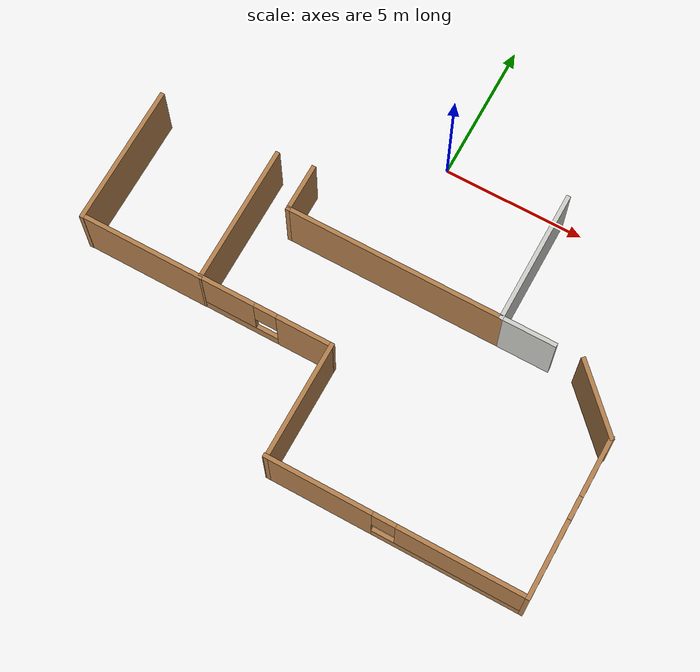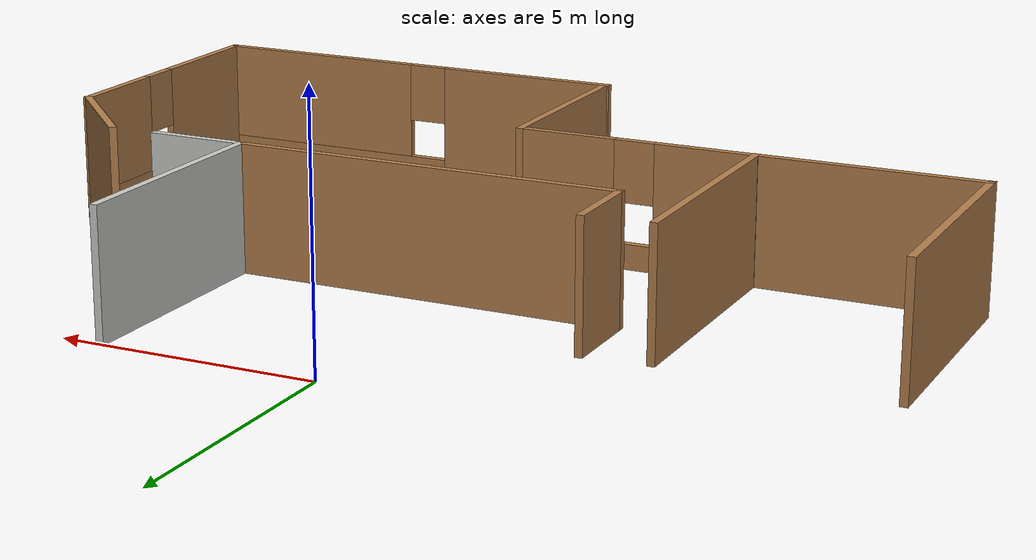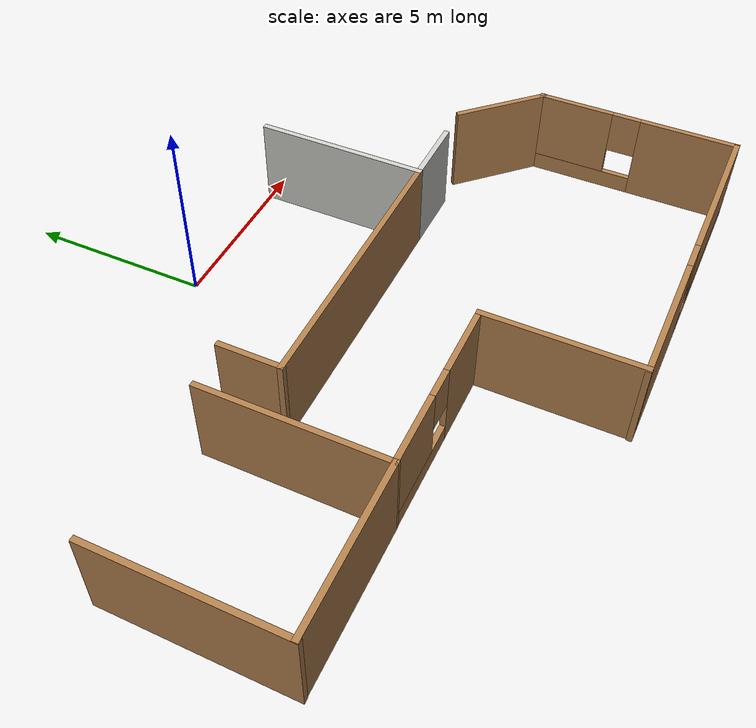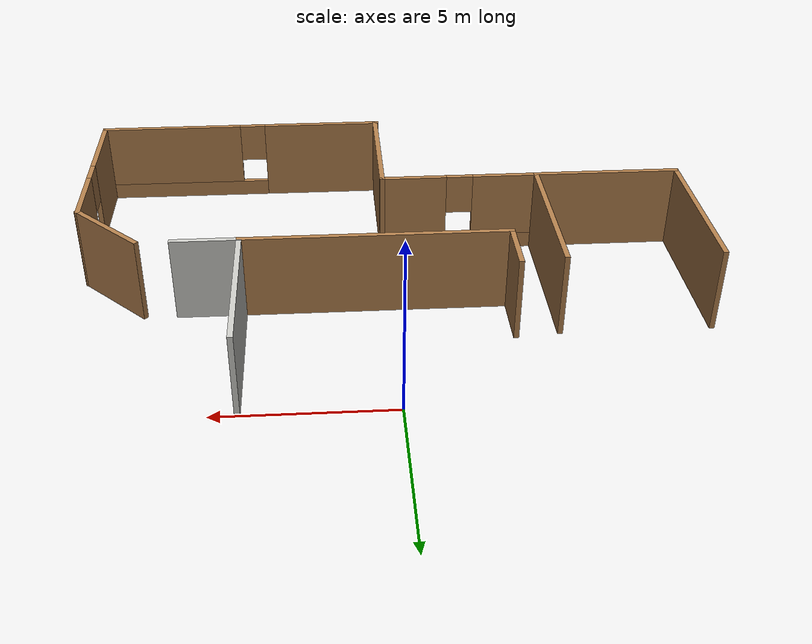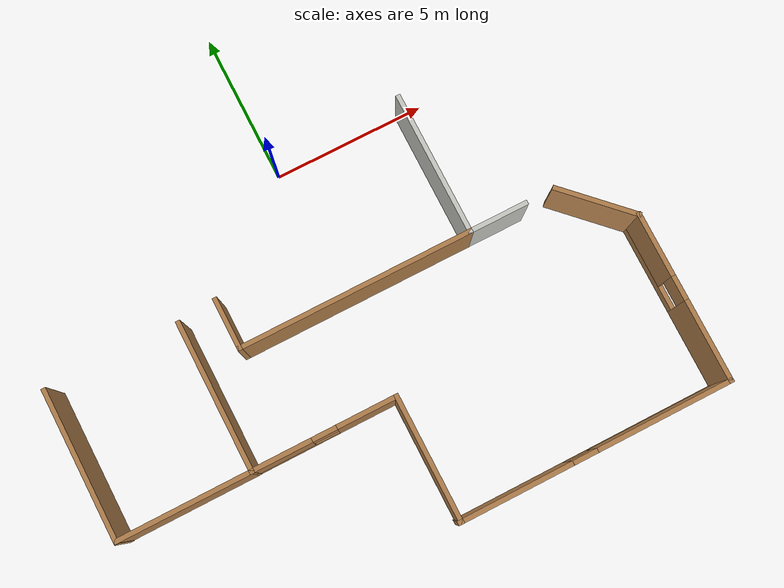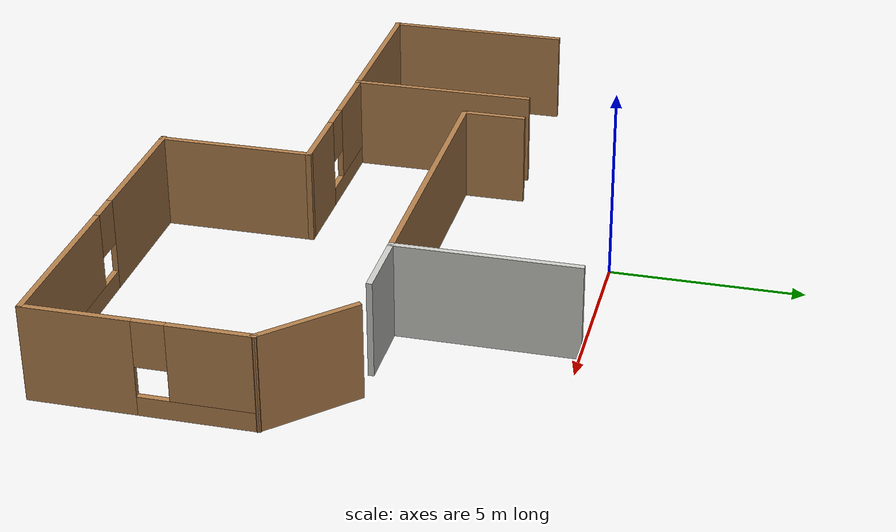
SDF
<sdf version="1.6">
 <model name="myHouse">
  <link name="Wall_0">
   <pose>0.060223 -9.98751 0 0 0 -1.5708</pose>
   <visual name="Wall_0_Visual">
    <pose>0 0 1.25 0 -0 0</pose>
    <geometry><box><size>4.184 0.15 2.5</size></box></geometry>
    <material>
     <script><uri>file://media/materials/scripts/gazebo.material</uri><name>Gazebo/Wood</name></script>
     <ambient>1 1 1 1</ambient>
     <diffuse>1 1 1 1</diffuse>
     <specular>0.2 0.2 0.2 1</specular>
     <emissive>0 0 0 1</emissive>
    </material>
    <meta><layer>0</layer></meta>
   </visual>
   <collision name="Wall_0_Collision">
    <pose>0 0 1.25 0 -0 0</pose>
    <geometry><box><size>4.184 0.15 2.5</size></box></geometry>
    <surface>
     <friction>
      <ode><mu>1</mu><mu2>1</mu2><fdir1>0 0 0</fdir1><slip1>0</slip1><slip2>0</slip2></ode>
      <torsional>
       <coefficient>1</coefficient>
       <patch_radius>0</patch_radius>
       <surface_radius>0</surface_radius>
       <use_patch_radius>1</use_patch_radius>
       <ode><slip>0</slip></ode>
      </torsional>
     </friction>
     <bounce><restitution_coefficient>0</restitution_coefficient><threshold>1e+06</threshold></bounce>
     <contact>
      <collide_without_contact>0</collide_without_contact>
      <collide_without_contact_bitmask>1</collide_without_contact_bitmask>
      <collide_bitmask>1</collide_bitmask>
      <ode>
       <soft_cfm>0</soft_cfm>
       <soft_erp>0.2</soft_erp>
       <kp>1e+13</kp>
       <kd>1</kd>
       <max_vel>0.01</max_vel>
       <min_depth>0</min_depth>
      </ode>
      <bullet>
       <split_impulse>1</split_impulse>
       <split_impulse_penetration_threshold>-0.01</split_impulse_penetration_threshold>
       <soft_cfm>0</soft_cfm>
       <soft_erp>0.2</soft_erp>
       <kp>1e+13</kp>
       <kd>1</kd>
      </bullet>
     </contact>
    </surface>
   </collision>
  </link>
  <link name="Wall_1">
   <pose>4.45004 -12.0042 0 0 -0 0</pose>
   <visual name="Wall_1_Visual_0">
    <pose>-2.62145 0 1.25 0 -0 0</pose>
    <geometry><box><size>3.7571 0.15 2.5</size></box></geometry>
    <material>
     <script><uri>file://media/materials/scripts/gazebo.material</uri><name>Gazebo/Wood</name></script>
     <ambient>1 1 1 1</ambient>
     <diffuse>1 1 1 1</diffuse>
     <specular>0.2 0.2 0.2 1</specular>
     <emissive>0 0 0 1</emissive>
    </material>
    <meta><layer>0</layer></meta>
   </visual>
   <visual name="Wall_1_Visual_1">
    <pose>1.87855 0 0.25 0 -0 0</pose>
    <geometry><box><size>5.2429 0.15 0.5</size></box></geometry>
    <material>
     <script><uri>file://media/materials/scripts/gazebo.material</uri><name>Gazebo/Wood</name></script>
     <ambient>1 1 1 1</ambient>
     <diffuse>1 1 1 1</diffuse>
     <specular>0.2 0.2 0.2 1</specular>
     <emissive>0 0 0 1</emissive>
    </material>
    <meta><layer>0</layer></meta>
   </visual>
   <visual name="Wall_1_Visual_2">
    <pose>2.27855 0 1.5 0 -0 0</pose>
    <geometry><box><size>4.4429 0.15 2</size></box></geometry>
    <material>
     <script><uri>file://media/materials/scripts/gazebo.material</uri><name>Gazebo/Wood</name></script>
     <ambient>1 1 1 1</ambient>
     <diffuse>1 1 1 1</diffuse>
     <specular>0.2 0.2 0.2 1</specular>
     <emissive>0 0 0 1</emissive>
    </material>
    <meta><layer>0</layer></meta>
   </visual>
   <visual name="Wall_1_Visual_3">
    <pose>-0.342896 0 1.9 0 -0 0</pose>
    <geometry><box><size>0.8 0.15 1.2</size></box></geometry>
    <material>
     <script><uri>file://media/materials/scripts/gazebo.material</uri><name>Gazebo/Wood</name></script>
     <ambient>1 1 1 1</ambient>
     <diffuse>1 1 1 1</diffuse>
     <specular>0.2 0.2 0.2 1</specular>
     <emissive>0 0 0 1</emissive>
    </material>
    <meta><layer>0</layer></meta>
   </visual>
   <collision name="Wall_1_Collision_0">
    <pose>-2.62145 0 1.25 0 -0 0</pose>
    <geometry><box><size>3.7571 0.15 2.5</size></box></geometry>
    <surface>
     <friction>
      <ode><mu>1</mu><mu2>1</mu2><fdir1>0 0 0</fdir1><slip1>0</slip1><slip2>0</slip2></ode>
      <torsional>
       <coefficient>1</coefficient>
       <patch_radius>0</patch_radius>
       <surface_radius>0</surface_radius>
       <use_patch_radius>1</use_patch_radius>
       <ode><slip>0</slip></ode>
      </torsional>
     </friction>
     <bounce><restitution_coefficient>0</restitution_coefficient><threshold>1e+06</threshold></bounce>
     <contact>
      <collide_without_contact>0</collide_without_contact>
      <collide_without_contact_bitmask>1</collide_without_contact_bitmask>
      <collide_bitmask>1</collide_bitmask>
      <ode>
       <soft_cfm>0</soft_cfm>
       <soft_erp>0.2</soft_erp>
       <kp>1e+13</kp>
       <kd>1</kd>
       <max_vel>0.01</max_vel>
       <min_depth>0</min_depth>
      </ode>
      <bullet>
       <split_impulse>1</split_impulse>
       <split_impulse_penetration_threshold>-0.01</split_impulse_penetration_threshold>
       <soft_cfm>0</soft_cfm>
       <soft_erp>0.2</soft_erp>
       <kp>1e+13</kp>
       <kd>1</kd>
      </bullet>
     </contact>
    </surface>
   </collision>
   <collision name="Wall_1_Collision_1">
    <pose>1.87855 0 0.25 0 -0 0</pose>
    <geometry><box><size>5.2429 0.15 0.5</size></box></geometry>
    <surface>
     <friction>
      <ode><mu>1</mu><mu2>1</mu2><fdir1>0 0 0</fdir1><slip1>0</slip1><slip2>0</slip2></ode>
      <torsional>
       <coefficient>1</coefficient>
       <patch_radius>0</patch_radius>
       <surface_radius>0</surface_radius>
       <use_patch_radius>1</use_patch_radius>
       <ode><slip>0</slip></ode>
      </torsional>
     </friction>
     <bounce><restitution_coefficient>0</restitution_coefficient><threshold>1e+06</threshold></bounce>
     <contact>
      <collide_without_contact>0</collide_without_contact>
      <collide_without_contact_bitmask>1</collide_without_contact_bitmask>
      <collide_bitmask>1</collide_bitmask>
      <ode>
       <soft_cfm>0</soft_cfm>
       <soft_erp>0.2</soft_erp>
       <kp>1e+13</kp>
       <kd>1</kd>
       <max_vel>0.01</max_vel>
       <min_depth>0</min_depth>
      </ode>
      <bullet>
       <split_impulse>1</split_impulse>
       <split_impulse_penetration_threshold>-0.01</split_impulse_penetration_threshold>
       <soft_cfm>0</soft_cfm>
       <soft_erp>0.2</soft_erp>
       <kp>1e+13</kp>
       <kd>1</kd>
      </bullet>
     </contact>
    </surface>
   </collision>
   <collision name="Wall_1_Collision_2">
    <pose>2.27855 0 1.5 0 -0 0</pose>
    <geometry><box><size>4.4429 0.15 2</size></box></geometry>
    <surface>
     <friction>
      <ode><mu>1</mu><mu2>1</mu2><fdir1>0 0 0</fdir1><slip1>0</slip1><slip2>0</slip2></ode>
      <torsional>
       <coefficient>1</coefficient>
       <patch_radius>0</patch_radius>
       <surface_radius>0</surface_radius>
       <use_patch_radius>1</use_patch_radius>
       <ode><slip>0</slip></ode>
      </torsional>
     </friction>
     <bounce><restitution_coefficient>0</restitution_coefficient><threshold>1e+06</threshold></bounce>
     <contact>
      <collide_without_contact>0</collide_without_contact>
      <collide_without_contact_bitmask>1</collide_without_contact_bitmask>
      <collide_bitmask>1</collide_bitmask>
      <ode>
       <soft_cfm>0</soft_cfm>
       <soft_erp>0.2</soft_erp>
       <kp>1e+13</kp>
       <kd>1</kd>
       <max_vel>0.01</max_vel>
       <min_depth>0</min_depth>
      </ode>
      <bullet>
       <split_impulse>1</split_impulse>
       <split_impulse_penetration_threshold>-0.01</split_impulse_penetration_threshold>
       <soft_cfm>0</soft_cfm>
       <soft_erp>0.2</soft_erp>
       <kp>1e+13</kp>
       <kd>1</kd>
      </bullet>
     </contact>
    </surface>
   </collision>
   <collision name="Wall_1_Collision_3">
    <pose>-0.342896 0 1.9 0 -0 0</pose>
    <geometry><box><size>0.8 0.15 1.2</size></box></geometry>
    <surface>
     <friction>
      <ode><mu>1</mu><mu2>1</mu2><fdir1>0 0 0</fdir1><slip1>0</slip1><slip2>0</slip2></ode>
      <torsional>
       <coefficient>1</coefficient>
       <patch_radius>0</patch_radius>
       <surface_radius>0</surface_radius>
       <use_patch_radius>1</use_patch_radius>
       <ode><slip>0</slip></ode>
      </torsional>
     </friction>
     <bounce><restitution_coefficient>0</restitution_coefficient><threshold>1e+06</threshold></bounce>
     <contact>
      <collide_without_contact>0</collide_without_contact>
      <collide_without_contact_bitmask>1</collide_without_contact_bitmask>
      <collide_bitmask>1</collide_bitmask>
      <ode>
       <soft_cfm>0</soft_cfm>
       <soft_erp>0.2</soft_erp>
       <kp>1e+13</kp>
       <kd>1</kd>
       <max_vel>0.01</max_vel>
       <min_depth>0</min_depth>
      </ode>
      <bullet>
       <split_impulse>1</split_impulse>
       <split_impulse_penetration_threshold>-0.01</split_impulse_penetration_threshold>
       <soft_cfm>0</soft_cfm>
       <soft_erp>0.2</soft_erp>
       <kp>1e+13</kp>
       <kd>1</kd>
      </bullet>
     </contact>
    </surface>
   </collision>
  </link>
  <link name="Wall_13">
   <pose>-6.79329 -7.98623 0 0 0 -3.14082</pose>
   <visual name="Wall_13_Visual">
    <pose>0 0 1.25 0 -0 0</pose>
    <geometry><box><size>4.46127 0.15 2.5</size></box></geometry>
    <material>
     <script><uri>file://media/materials/scripts/gazebo.material</uri><name>Gazebo/Wood</name></script>
     <ambient>1 1 1 1</ambient>
     <diffuse>1 1 1 1</diffuse>
     <specular>0.2 0.2 0.2 1</specular>
     <emissive>0 0 0 1</emissive>
    </material>
    <meta><layer>0</layer></meta>
   </visual>
   <collision name="Wall_13_Collision">
    <pose>0 0 1.25 0 -0 0</pose>
    <geometry><box><size>4.46127 0.15 2.5</size></box></geometry>
    <surface>
     <friction>
      <ode><mu>1</mu><mu2>1</mu2><fdir1>0 0 0</fdir1><slip1>0</slip1><slip2>0</slip2></ode>
      <torsional>
       <coefficient>1</coefficient>
       <patch_radius>0</patch_radius>
       <surface_radius>0</surface_radius>
       <use_patch_radius>1</use_patch_radius>
       <ode><slip>0</slip></ode>
      </torsional>
     </friction>
     <bounce><restitution_coefficient>0</restitution_coefficient><threshold>1e+06</threshold></bounce>
     <contact>
      <collide_without_contact>0</collide_without_contact>
      <collide_without_contact_bitmask>1</collide_without_contact_bitmask>
      <collide_bitmask>1</collide_bitmask>
      <ode>
       <soft_cfm>0</soft_cfm>
       <soft_erp>0.2</soft_erp>
       <kp>1e+13</kp>
       <kd>1</kd>
       <max_vel>0.01</max_vel>
       <min_depth>0</min_depth>
      </ode>
      <bullet>
       <split_impulse>1</split_impulse>
       <split_impulse_penetration_threshold>-0.01</split_impulse_penetration_threshold>
       <soft_cfm>0</soft_cfm>
       <soft_erp>0.2</soft_erp>
       <kp>1e+13</kp>
       <kd>1</kd>
      </bullet>
     </contact>
    </surface>
   </collision>
  </link>
  <link name="Wall_14">
   <pose>-8.96215 -5.57611 0 0 -0 1.5708</pose>
   <visual name="Wall_14_Visual">
    <pose>0 0 1.25 0 -0 0</pose>
    <geometry><box><size>5 0.15 2.5</size></box></geometry>
    <material>
     <script><uri>file://media/materials/scripts/gazebo.material</uri><name>Gazebo/Wood</name></script>
     <ambient>1 1 1 1</ambient>
     <diffuse>1 1 1 1</diffuse>
     <specular>0.2 0.2 0.2 1</specular>
     <emissive>0 0 0 1</emissive>
    </material>
    <meta><layer>0</layer></meta>
   </visual>
   <collision name="Wall_14_Collision">
    <pose>0 0 1.25 0 -0 0</pose>
    <geometry><box><size>5 0.15 2.5</size></box></geometry>
    <surface>
     <friction>
      <ode><mu>1</mu><mu2>1</mu2><fdir1>0 0 0</fdir1><slip1>0</slip1><slip2>0</slip2></ode>
      <torsional>
       <coefficient>1</coefficient>
       <patch_radius>0</patch_radius>
       <surface_radius>0</surface_radius>
       <use_patch_radius>1</use_patch_radius>
       <ode><slip>0</slip></ode>
      </torsional>
     </friction>
     <bounce><restitution_coefficient>0</restitution_coefficient><threshold>1e+06</threshold></bounce>
     <contact>
      <collide_without_contact>0</collide_without_contact>
      <collide_without_contact_bitmask>1</collide_without_contact_bitmask>
      <collide_bitmask>1</collide_bitmask>
      <ode>
       <soft_cfm>0</soft_cfm>
       <soft_erp>0.2</soft_erp>
       <kp>1e+13</kp>
       <kd>1</kd>
       <max_vel>0.01</max_vel>
       <min_depth>0</min_depth>
      </ode>
      <bullet>
       <split_impulse>1</split_impulse>
       <split_impulse_penetration_threshold>-0.01</split_impulse_penetration_threshold>
       <soft_cfm>0</soft_cfm>
       <soft_erp>0.2</soft_erp>
       <kp>1e+13</kp>
       <kd>1</kd>
      </bullet>
     </contact>
    </surface>
   </collision>
  </link>
  <link name="Wall_2">
   <pose>8.91022 -9.23751 0 0 -0 1.5708</pose>
   <visual name="Wall_2_Visual_0">
    <pose>-1.47369 0 1.25 0 -0 0</pose>
    <geometry><box><size>2.73646 0.15 2.5</size></box></geometry>
    <material>
     <script><uri>file://media/materials/scripts/gazebo.material</uri><name>Gazebo/Wood</name></script>
     <ambient>1 1 1 1</ambient>
     <diffuse>1 1 1 1</diffuse>
     <specular>0.2 0.2 0.2 1</specular>
     <emissive>0 0 0 1</emissive>
    </material>
    <meta><layer>0</layer></meta>
   </visual>
   <visual name="Wall_2_Visual_1">
    <pose>1.36823 0 0.25 0 -0 0</pose>
    <geometry><box><size>2.94738 0.15 0.5</size></box></geometry>
    <material>
     <script><uri>file://media/materials/scripts/gazebo.material</uri><name>Gazebo/Wood</name></script>
     <ambient>1 1 1 1</ambient>
     <diffuse>1 1 1 1</diffuse>
     <specular>0.2 0.2 0.2 1</specular>
     <emissive>0 0 0 1</emissive>
    </material>
    <meta><layer>0</layer></meta>
   </visual>
   <visual name="Wall_2_Visual_2">
    <pose>1.76823 0 1.5 0 -0 0</pose>
    <geometry><box><size>2.14738 0.15 2</size></box></geometry>
    <material>
     <script><uri>file://media/materials/scripts/gazebo.material</uri><name>Gazebo/Wood</name></script>
     <ambient>1 1 1 1</ambient>
     <diffuse>1 1 1 1</diffuse>
     <specular>0.2 0.2 0.2 1</specular>
     <emissive>0 0 0 1</emissive>
    </material>
    <meta><layer>0</layer></meta>
   </visual>
   <visual name="Wall_2_Visual_3">
    <pose>0.294538 0 1.9 0 -0 0</pose>
    <geometry><box><size>0.8 0.15 1.2</size></box></geometry>
    <material>
     <script><uri>file://media/materials/scripts/gazebo.material</uri><name>Gazebo/Wood</name></script>
     <ambient>1 1 1 1</ambient>
     <diffuse>1 1 1 1</diffuse>
     <specular>0.2 0.2 0.2 1</specular>
     <emissive>0 0 0 1</emissive>
    </material>
    <meta><layer>0</layer></meta>
   </visual>
   <collision name="Wall_2_Collision_0">
    <pose>-1.47369 0 1.25 0 -0 0</pose>
    <geometry><box><size>2.73646 0.15 2.5</size></box></geometry>
    <surface>
     <friction>
      <ode><mu>1</mu><mu2>1</mu2><fdir1>0 0 0</fdir1><slip1>0</slip1><slip2>0</slip2></ode>
      <torsional>
       <coefficient>1</coefficient>
       <patch_radius>0</patch_radius>
       <surface_radius>0</surface_radius>
       <use_patch_radius>1</use_patch_radius>
       <ode><slip>0</slip></ode>
      </torsional>
     </friction>
     <bounce><restitution_coefficient>0</restitution_coefficient><threshold>1e+06</threshold></bounce>
     <contact>
      <collide_without_contact>0</collide_without_contact>
      <collide_without_contact_bitmask>1</collide_without_contact_bitmask>
      <collide_bitmask>1</collide_bitmask>
      <ode>
       <soft_cfm>0</soft_cfm>
       <soft_erp>0.2</soft_erp>
       <kp>1e+13</kp>
       <kd>1</kd>
       <max_vel>0.01</max_vel>
       <min_depth>0</min_depth>
      </ode>
      <bullet>
       <split_impulse>1</split_impulse>
       <split_impulse_penetration_threshold>-0.01</split_impulse_penetration_threshold>
       <soft_cfm>0</soft_cfm>
       <soft_erp>0.2</soft_erp>
       <kp>1e+13</kp>
       <kd>1</kd>
      </bullet>
     </contact>
    </surface>
   </collision>
   <collision name="Wall_2_Collision_1">
    <pose>1.36823 0 0.25 0 -0 0</pose>
    <geometry><box><size>2.94738 0.15 0.5</size></box></geometry>
    <surface>
     <friction>
      <ode><mu>1</mu><mu2>1</mu2><fdir1>0 0 0</fdir1><slip1>0</slip1><slip2>0</slip2></ode>
      <torsional>
       <coefficient>1</coefficient>
       <patch_radius>0</patch_radius>
       <surface_radius>0</surface_radius>
       <use_patch_radius>1</use_patch_radius>
       <ode><slip>0</slip></ode>
      </torsional>
     </friction>
     <bounce><restitution_coefficient>0</restitution_coefficient><threshold>1e+06</threshold></bounce>
     <contact>
      <collide_without_contact>0</collide_without_contact>
      <collide_without_contact_bitmask>1</collide_without_contact_bitmask>
      <collide_bitmask>1</collide_bitmask>
      <ode>
       <soft_cfm>0</soft_cfm>
       <soft_erp>0.2</soft_erp>
       <kp>1e+13</kp>
       <kd>1</kd>
       <max_vel>0.01</max_vel>
       <min_depth>0</min_depth>
      </ode>
      <bullet>
       <split_impulse>1</split_impulse>
       <split_impulse_penetration_threshold>-0.01</split_impulse_penetration_threshold>
       <soft_cfm>0</soft_cfm>
       <soft_erp>0.2</soft_erp>
       <kp>1e+13</kp>
       <kd>1</kd>
      </bullet>
     </contact>
    </surface>
   </collision>
   <collision name="Wall_2_Collision_2">
    <pose>1.76823 0 1.5 0 -0 0</pose>
    <geometry><box><size>2.14738 0.15 2</size></box></geometry>
    <surface>
     <friction>
      <ode><mu>1</mu><mu2>1</mu2><fdir1>0 0 0</fdir1><slip1>0</slip1><slip2>0</slip2></ode>
      <torsional>
       <coefficient>1</coefficient>
       <patch_radius>0</patch_radius>
       <surface_radius>0</surface_radius>
       <use_patch_radius>1</use_patch_radius>
       <ode><slip>0</slip></ode>
      </torsional>
     </friction>
     <bounce><restitution_coefficient>0</restitution_coefficient><threshold>1e+06</threshold></bounce>
     <contact>
      <collide_without_contact>0</collide_without_contact>
      <collide_without_contact_bitmask>1</collide_without_contact_bitmask>
      <collide_bitmask>1</collide_bitmask>
      <ode>
       <soft_cfm>0</soft_cfm>
       <soft_erp>0.2</soft_erp>
       <kp>1e+13</kp>
       <kd>1</kd>
       <max_vel>0.01</max_vel>
       <min_depth>0</min_depth>
      </ode>
      <bullet>
       <split_impulse>1</split_impulse>
       <split_impulse_penetration_threshold>-0.01</split_impulse_penetration_threshold>
       <soft_cfm>0</soft_cfm>
       <soft_erp>0.2</soft_erp>
       <kp>1e+13</kp>
       <kd>1</kd>
      </bullet>
     </contact>
    </surface>
   </collision>
   <collision name="Wall_2_Collision_3">
    <pose>0.294538 0 1.9 0 -0 0</pose>
    <geometry><box><size>0.8 0.15 1.2</size></box></geometry>
    <surface>
     <friction>
      <ode><mu>1</mu><mu2>1</mu2><fdir1>0 0 0</fdir1><slip1>0</slip1><slip2>0</slip2></ode>
      <torsional>
       <coefficient>1</coefficient>
       <patch_radius>0</patch_radius>
       <surface_radius>0</surface_radius>
       <use_patch_radius>1</use_patch_radius>
       <ode><slip>0</slip></ode>
      </torsional>
     </friction>
     <bounce><restitution_coefficient>0</restitution_coefficient><threshold>1e+06</threshold></bounce>
     <contact>
      <collide_without_contact>0</collide_without_contact>
      <collide_without_contact_bitmask>1</collide_without_contact_bitmask>
      <collide_bitmask>1</collide_bitmask>
      <ode>
       <soft_cfm>0</soft_cfm>
       <soft_erp>0.2</soft_erp>
       <kp>1e+13</kp>
       <kd>1</kd>
       <max_vel>0.01</max_vel>
       <min_depth>0</min_depth>
      </ode>
      <bullet>
       <split_impulse>1</split_impulse>
       <split_impulse_penetration_threshold>-0.01</split_impulse_penetration_threshold>
       <soft_cfm>0</soft_cfm>
       <soft_erp>0.2</soft_erp>
       <kp>1e+13</kp>
       <kd>1</kd>
      </bullet>
     </contact>
    </surface>
   </collision>
  </link>
  <link name="Wall_23">
   <pose>4.22175 -2.33234 0 0 0 -1.5708</pose>
   <visual name="Wall_23_Visual">
    <pose>0 0 1.25 0 -0 0</pose>
    <geometry><box><size>4.75 0.15 2.5</size></box></geometry>
    <material>
     <script><uri>file://media/materials/scripts/gazebo.material</uri><name>Gazebo/CeilingTiled</name></script>
     <ambient>0.921569 0.807843 0.615686 1</ambient>
     <diffuse>1 1 1 1</diffuse>
     <specular>0 0 0 1</specular>
     <emissive>0 0 0 1</emissive>
    </material>
    <meta><layer>0</layer></meta>
   </visual>
   <collision name="Wall_23_Collision">
    <pose>0 0 1.25 0 -0 0</pose>
    <geometry><box><size>4.75 0.15 2.5</size></box></geometry>
    <surface>
     <friction>
      <ode><mu>1</mu><mu2>1</mu2><fdir1>0 0 0</fdir1><slip1>0</slip1><slip2>0</slip2></ode>
      <torsional>
       <coefficient>1</coefficient>
       <patch_radius>0</patch_radius>
       <surface_radius>0</surface_radius>
       <use_patch_radius>1</use_patch_radius>
       <ode><slip>0</slip></ode>
      </torsional>
     </friction>
     <bounce><restitution_coefficient>0</restitution_coefficient><threshold>1e+06</threshold></bounce>
     <contact>
      <collide_without_contact>0</collide_without_contact>
      <collide_without_contact_bitmask>1</collide_without_contact_bitmask>
      <collide_bitmask>1</collide_bitmask>
      <ode>
       <soft_cfm>0</soft_cfm>
       <soft_erp>0.2</soft_erp>
       <kp>1e+13</kp>
       <kd>1</kd>
       <max_vel>0.01</max_vel>
       <min_depth>0</min_depth>
      </ode>
      <bullet>
       <split_impulse>1</split_impulse>
       <split_impulse_penetration_threshold>-0.01</split_impulse_penetration_threshold>
       <soft_cfm>0</soft_cfm>
       <soft_erp>0.2</soft_erp>
       <kp>1e+13</kp>
       <kd>1</kd>
      </bullet>
     </contact>
    </surface>
   </collision>
  </link>
  <link name="Wall_24">
   <pose>0.421746 -4.63234 0 0 -0 3.14159</pose>
   <visual name="Wall_24_Visual">
    <pose>0 0 1.25 0 -0 0</pose>
    <geometry><box><size>7.75 0.15 2.5</size></box></geometry>
    <material>
     <script><uri>file://media/materials/scripts/gazebo.material</uri><name>Gazebo/Wood</name></script>
     <ambient>1 1 1 1</ambient>
     <diffuse>1 1 1 1</diffuse>
     <specular>0.2 0.2 0.2 1</specular>
     <emissive>0 0 0 1</emissive>
    </material>
    <meta><layer>0</layer></meta>
   </visual>
   <collision name="Wall_24_Collision">
    <pose>0 0 1.25 0 -0 0</pose>
    <geometry><box><size>7.75 0.15 2.5</size></box></geometry>
    <surface>
     <friction>
      <ode><mu>1</mu><mu2>1</mu2><fdir1>0 0 0</fdir1><slip1>0</slip1><slip2>0</slip2></ode>
      <torsional>
       <coefficient>1</coefficient>
       <patch_radius>0</patch_radius>
       <surface_radius>0</surface_radius>
       <use_patch_radius>1</use_patch_radius>
       <ode><slip>0</slip></ode>
      </torsional>
     </friction>
     <bounce><restitution_coefficient>0</restitution_coefficient><threshold>1e+06</threshold></bounce>
     <contact>
      <collide_without_contact>0</collide_without_contact>
      <collide_without_contact_bitmask>1</collide_without_contact_bitmask>
      <collide_bitmask>1</collide_bitmask>
      <ode>
       <soft_cfm>0</soft_cfm>
       <soft_erp>0.2</soft_erp>
       <kp>1e+13</kp>
       <kd>1</kd>
       <max_vel>0.01</max_vel>
       <min_depth>0</min_depth>
      </ode>
      <bullet>
       <split_impulse>1</split_impulse>
       <split_impulse_penetration_threshold>-0.01</split_impulse_penetration_threshold>
       <soft_cfm>0</soft_cfm>
       <soft_erp>0.2</soft_erp>
       <kp>1e+13</kp>
       <kd>1</kd>
      </bullet>
     </contact>
    </surface>
   </collision>
  </link>
  <link name="Wall_25">
   <pose>-3.37825 -3.83234 0 0 -0 1.5708</pose>
   <visual name="Wall_25_Visual">
    <pose>0 0 1.25 0 -0 0</pose>
    <geometry><box><size>1.75 0.15 2.5</size></box></geometry>
    <material>
     <script><uri>file://media/materials/scripts/gazebo.material</uri><name>Gazebo/Wood</name></script>
     <ambient>1 1 1 1</ambient>
     <diffuse>1 1 1 1</diffuse>
     <specular>0.2 0.2 0.2 1</specular>
     <emissive>0 0 0 1</emissive>
    </material>
    <meta><layer>0</layer></meta>
   </visual>
   <collision name="Wall_25_Collision">
    <pose>0 0 1.25 0 -0 0</pose>
    <geometry><box><size>1.75 0.15 2.5</size></box></geometry>
    <surface>
     <friction>
      <ode><mu>1</mu><mu2>1</mu2><fdir1>0 0 0</fdir1><slip1>0</slip1><slip2>0</slip2></ode>
      <torsional>
       <coefficient>1</coefficient>
       <patch_radius>0</patch_radius>
       <surface_radius>0</surface_radius>
       <use_patch_radius>1</use_patch_radius>
       <ode><slip>0</slip></ode>
      </torsional>
     </friction>
     <bounce><restitution_coefficient>0</restitution_coefficient><threshold>1e+06</threshold></bounce>
     <contact>
      <collide_without_contact>0</collide_without_contact>
      <collide_without_contact_bitmask>1</collide_without_contact_bitmask>
      <collide_bitmask>1</collide_bitmask>
      <ode>
       <soft_cfm>0</soft_cfm>
       <soft_erp>0.2</soft_erp>
       <kp>1e+13</kp>
       <kd>1</kd>
       <max_vel>0.01</max_vel>
       <min_depth>0</min_depth>
      </ode>
      <bullet>
       <split_impulse>1</split_impulse>
       <split_impulse_penetration_threshold>-0.01</split_impulse_penetration_threshold>
       <soft_cfm>0</soft_cfm>
       <soft_erp>0.2</soft_erp>
       <kp>1e+13</kp>
       <kd>1</kd>
      </bullet>
     </contact>
    </surface>
   </collision>
  </link>
  <link name="Wall_3">
   <pose>7.99098 -5.55157 0 0 -0 2.35619</pose>
   <visual name="Wall_3_Visual">
    <pose>0 0 1.25 0 -0 0</pose>
    <geometry><box><size>2.75 0.15 2.5</size></box></geometry>
    <material>
     <script><uri>file://media/materials/scripts/gazebo.material</uri><name>Gazebo/Wood</name></script>
     <ambient>1 1 1 1</ambient>
     <diffuse>1 1 1 1</diffuse>
     <specular>0.2 0.2 0.2 1</specular>
     <emissive>0 0 0 1</emissive>
    </material>
    <meta><layer>0</layer></meta>
   </visual>
   <collision name="Wall_3_Collision">
    <pose>0 0 1.25 0 -0 0</pose>
    <geometry><box><size>2.75 0.15 2.5</size></box></geometry>
    <surface>
     <friction>
      <ode><mu>1</mu><mu2>1</mu2><fdir1>0 0 0</fdir1><slip1>0</slip1><slip2>0</slip2></ode>
      <torsional>
       <coefficient>1</coefficient>
       <patch_radius>0</patch_radius>
       <surface_radius>0</surface_radius>
       <use_patch_radius>1</use_patch_radius>
       <ode><slip>0</slip></ode>
      </torsional>
     </friction>
     <bounce><restitution_coefficient>0</restitution_coefficient><threshold>1e+06</threshold></bounce>
     <contact>
      <collide_without_contact>0</collide_without_contact>
      <collide_without_contact_bitmask>1</collide_without_contact_bitmask>
      <collide_bitmask>1</collide_bitmask>
      <ode>
       <soft_cfm>0</soft_cfm>
       <soft_erp>0.2</soft_erp>
       <kp>1e+13</kp>
       <kd>1</kd>
       <max_vel>0.01</max_vel>
       <min_depth>0</min_depth>
      </ode>
      <bullet>
       <split_impulse>1</split_impulse>
       <split_impulse_penetration_threshold>-0.01</split_impulse_penetration_threshold>
       <soft_cfm>0</soft_cfm>
       <soft_erp>0.2</soft_erp>
       <kp>1e+13</kp>
       <kd>1</kd>
      </bullet>
     </contact>
    </surface>
   </collision>
  </link>
  <link name="Wall_54">
   <pose>5.14675 -4.63234 0 0 -0 0</pose>
   <visual name="Wall_54_Visual">
    <pose>0 0 1.25 0 -0 0</pose>
    <geometry><box><size>2 0.15 2.5</size></box></geometry>
    <material>
     <script><uri>file://media/materials/scripts/gazebo.material</uri><name>Gazebo/CeilingTiled</name></script>
     <ambient>0.921569 0.807843 0.615686 1</ambient>
     <diffuse>1 1 1 1</diffuse>
     <specular>0 0 0 1</specular>
     <emissive>0 0 0 1</emissive>
    </material>
    <meta><layer>0</layer></meta>
   </visual>
   <collision name="Wall_54_Collision">
    <pose>0 0 1.25 0 -0 0</pose>
    <geometry><box><size>2 0.15 2.5</size></box></geometry>
    <surface>
     <friction>
      <ode><mu>1</mu><mu2>1</mu2><fdir1>0 0 0</fdir1><slip1>0</slip1><slip2>0</slip2></ode>
      <torsional>
       <coefficient>1</coefficient>
       <patch_radius>0</patch_radius>
       <surface_radius>0</surface_radius>
       <use_patch_radius>1</use_patch_radius>
       <ode><slip>0</slip></ode>
      </torsional>
     </friction>
     <bounce><restitution_coefficient>0</restitution_coefficient><threshold>1e+06</threshold></bounce>
     <contact>
      <collide_without_contact>0</collide_without_contact>
      <collide_without_contact_bitmask>1</collide_without_contact_bitmask>
      <collide_bitmask>1</collide_bitmask>
      <ode>
       <soft_cfm>0</soft_cfm>
       <soft_erp>0.2</soft_erp>
       <kp>1e+13</kp>
       <kd>1</kd>
       <max_vel>0.01</max_vel>
       <min_depth>0</min_depth>
      </ode>
      <bullet>
       <split_impulse>1</split_impulse>
       <split_impulse_penetration_threshold>-0.01</split_impulse_penetration_threshold>
       <soft_cfm>0</soft_cfm>
       <soft_erp>0.2</soft_erp>
       <kp>1e+13</kp>
       <kd>1</kd>
      </bullet>
     </contact>
    </surface>
   </collision>
  </link>
  <link name="Wall_7">
   <pose>-2.28871 -7.97269 0 0 0 -3.14079</pose>
   <visual name="Wall_7_Visual_0">
    <pose>-1.40995 0 1.25 0 -0 0</pose>
    <geometry><box><size>2.02832 0.15 2.5</size></box></geometry>
    <material>
     <script><uri>file://media/materials/scripts/gazebo.material</uri><name>Gazebo/Wood</name></script>
     <ambient>1 1 1 1</ambient>
     <diffuse>1 1 1 1</diffuse>
     <specular>0.2 0.2 0.2 1</specular>
     <emissive>0 0 0 1</emissive>
    </material>
    <meta><layer>0</layer></meta>
   </visual>
   <visual name="Wall_7_Visual_1">
    <pose>1.01416 0 0.25 0 -0 0</pose>
    <geometry><box><size>2.81989 0.15 0.5</size></box></geometry>
    <material>
     <script><uri>file://media/materials/scripts/gazebo.material</uri><name>Gazebo/Wood</name></script>
     <ambient>1 1 1 1</ambient>
     <diffuse>1 1 1 1</diffuse>
     <specular>0.2 0.2 0.2 1</specular>
     <emissive>0 0 0 1</emissive>
    </material>
    <meta><layer>0</layer></meta>
   </visual>
   <visual name="Wall_7_Visual_2">
    <pose>1.41416 0 1.5 0 -0 0</pose>
    <geometry><box><size>2.01989 0.15 2</size></box></geometry>
    <material>
     <script><uri>file://media/materials/scripts/gazebo.material</uri><name>Gazebo/Wood</name></script>
     <ambient>1 1 1 1</ambient>
     <diffuse>1 1 1 1</diffuse>
     <specular>0.2 0.2 0.2 1</specular>
     <emissive>0 0 0 1</emissive>
    </material>
    <meta><layer>0</layer></meta>
   </visual>
   <visual name="Wall_7_Visual_3">
    <pose>0.00421 0 1.9 0 -0 0</pose>
    <geometry><box><size>0.8 0.15 1.2</size></box></geometry>
    <material>
     <script><uri>file://media/materials/scripts/gazebo.material</uri><name>Gazebo/Wood</name></script>
     <ambient>1 1 1 1</ambient>
     <diffuse>1 1 1 1</diffuse>
     <specular>0.2 0.2 0.2 1</specular>
     <emissive>0 0 0 1</emissive>
    </material>
    <meta><layer>0</layer></meta>
   </visual>
   <collision name="Wall_7_Collision_0">
    <pose>-1.40995 0 1.25 0 -0 0</pose>
    <geometry><box><size>2.02832 0.15 2.5</size></box></geometry>
    <surface>
     <friction>
      <ode><mu>1</mu><mu2>1</mu2><fdir1>0 0 0</fdir1><slip1>0</slip1><slip2>0</slip2></ode>
      <torsional>
       <coefficient>1</coefficient>
       <patch_radius>0</patch_radius>
       <surface_radius>0</surface_radius>
       <use_patch_radius>1</use_patch_radius>
       <ode><slip>0</slip></ode>
      </torsional>
     </friction>
     <bounce><restitution_coefficient>0</restitution_coefficient><threshold>1e+06</threshold></bounce>
     <contact>
      <collide_without_contact>0</collide_without_contact>
      <collide_without_contact_bitmask>1</collide_without_contact_bitmask>
      <collide_bitmask>1</collide_bitmask>
      <ode>
       <soft_cfm>0</soft_cfm>
       <soft_erp>0.2</soft_erp>
       <kp>1e+13</kp>
       <kd>1</kd>
       <max_vel>0.01</max_vel>
       <min_depth>0</min_depth>
      </ode>
      <bullet>
       <split_impulse>1</split_impulse>
       <split_impulse_penetration_threshold>-0.01</split_impulse_penetration_threshold>
       <soft_cfm>0</soft_cfm>
       <soft_erp>0.2</soft_erp>
       <kp>1e+13</kp>
       <kd>1</kd>
      </bullet>
     </contact>
    </surface>
   </collision>
   <collision name="Wall_7_Collision_1">
    <pose>1.01416 0 0.25 0 -0 0</pose>
    <geometry><box><size>2.81989 0.15 0.5</size></box></geometry>
    <surface>
     <friction>
      <ode><mu>1</mu><mu2>1</mu2><fdir1>0 0 0</fdir1><slip1>0</slip1><slip2>0</slip2></ode>
      <torsional>
       <coefficient>1</coefficient>
       <patch_radius>0</patch_radius>
       <surface_radius>0</surface_radius>
       <use_patch_radius>1</use_patch_radius>
       <ode><slip>0</slip></ode>
      </torsional>
     </friction>
     <bounce><restitution_coefficient>0</restitution_coefficient><threshold>1e+06</threshold></bounce>
     <contact>
      <collide_without_contact>0</collide_without_contact>
      <collide_without_contact_bitmask>1</collide_without_contact_bitmask>
      <collide_bitmask>1</collide_bitmask>
      <ode>
       <soft_cfm>0</soft_cfm>
       <soft_erp>0.2</soft_erp>
       <kp>1e+13</kp>
       <kd>1</kd>
       <max_vel>0.01</max_vel>
       <min_depth>0</min_depth>
      </ode>
      <bullet>
       <split_impulse>1</split_impulse>
       <split_impulse_penetration_threshold>-0.01</split_impulse_penetration_threshold>
       <soft_cfm>0</soft_cfm>
       <soft_erp>0.2</soft_erp>
       <kp>1e+13</kp>
       <kd>1</kd>
      </bullet>
     </contact>
    </surface>
   </collision>
   <collision name="Wall_7_Collision_2">
    <pose>1.41416 0 1.5 0 -0 0</pose>
    <geometry><box><size>2.01989 0.15 2</size></box></geometry>
    <surface>
     <friction>
      <ode><mu>1</mu><mu2>1</mu2><fdir1>0 0 0</fdir1><slip1>0</slip1><slip2>0</slip2></ode>
      <torsional>
       <coefficient>1</coefficient>
       <patch_radius>0</patch_radius>
       <surface_radius>0</surface_radius>
       <use_patch_radius>1</use_patch_radius>
       <ode><slip>0</slip></ode>
      </torsional>
     </friction>
     <bounce><restitution_coefficient>0</restitution_coefficient><threshold>1e+06</threshold></bounce>
     <contact>
      <collide_without_contact>0</collide_without_contact>
      <collide_without_contact_bitmask>1</collide_without_contact_bitmask>
      <collide_bitmask>1</collide_bitmask>
      <ode>
       <soft_cfm>0</soft_cfm>
       <soft_erp>0.2</soft_erp>
       <kp>1e+13</kp>
       <kd>1</kd>
       <max_vel>0.01</max_vel>
       <min_depth>0</min_depth>
      </ode>
      <bullet>
       <split_impulse>1</split_impulse>
       <split_impulse_penetration_threshold>-0.01</split_impulse_penetration_threshold>
       <soft_cfm>0</soft_cfm>
       <soft_erp>0.2</soft_erp>
       <kp>1e+13</kp>
       <kd>1</kd>
      </bullet>
     </contact>
    </surface>
   </collision>
   <collision name="Wall_7_Collision_3">
    <pose>0.00421 0 1.9 0 -0 0</pose>
    <geometry><box><size>0.8 0.15 1.2</size></box></geometry>
    <surface>
     <friction>
      <ode><mu>1</mu><mu2>1</mu2><fdir1>0 0 0</fdir1><slip1>0</slip1><slip2>0</slip2></ode>
      <torsional>
       <coefficient>1</coefficient>
       <patch_radius>0</patch_radius>
       <surface_radius>0</surface_radius>
       <use_patch_radius>1</use_patch_radius>
       <ode><slip>0</slip></ode>
      </torsional>
     </friction>
     <bounce><restitution_coefficient>0</restitution_coefficient><threshold>1e+06</threshold></bounce>
     <contact>
      <collide_without_contact>0</collide_without_contact>
      <collide_without_contact_bitmask>1</collide_without_contact_bitmask>
      <collide_bitmask>1</collide_bitmask>
      <ode>
       <soft_cfm>0</soft_cfm>
       <soft_erp>0.2</soft_erp>
       <kp>1e+13</kp>
       <kd>1</kd>
       <max_vel>0.01</max_vel>
       <min_depth>0</min_depth>
      </ode>
      <bullet>
       <split_impulse>1</split_impulse>
       <split_impulse_penetration_threshold>-0.01</split_impulse_penetration_threshold>
       <soft_cfm>0</soft_cfm>
       <soft_erp>0.2</soft_erp>
       <kp>1e+13</kp>
       <kd>1</kd>
      </bullet>
     </contact>
    </surface>
   </collision>
  </link>
  <link name="Wall_8">
   <pose>-4.63765 -5.57272 0 0 -0 1.5708</pose>
   <visual name="Wall_8_Visual">
    <pose>0 0 1.25 0 -0 0</pose>
    <geometry><box><size>4.9737 0.15 2.5</size></box></geometry>
    <material>
     <script><uri>file://media/materials/scripts/gazebo.material</uri><name>Gazebo/Wood</name></script>
     <ambient>1 1 1 1</ambient>
     <diffuse>1 1 1 1</diffuse>
     <specular>0.2 0.2 0.2 1</specular>
     <emissive>0 0 0 1</emissive>
    </material>
    <meta><layer>0</layer></meta>
   </visual>
   <collision name="Wall_8_Collision">
    <pose>0 0 1.25 0 -0 0</pose>
    <geometry><box><size>4.9737 0.15 2.5</size></box></geometry>
    <surface>
     <friction>
      <ode><mu>1</mu><mu2>1</mu2><fdir1>0 0 0</fdir1><slip1>0</slip1><slip2>0</slip2></ode>
      <torsional>
       <coefficient>1</coefficient>
       <patch_radius>0</patch_radius>
       <surface_radius>0</surface_radius>
       <use_patch_radius>1</use_patch_radius>
       <ode><slip>0</slip></ode>
      </torsional>
     </friction>
     <bounce><restitution_coefficient>0</restitution_coefficient><threshold>1e+06</threshold></bounce>
     <contact>
      <collide_without_contact>0</collide_without_contact>
      <collide_without_contact_bitmask>1</collide_without_contact_bitmask>
      <collide_bitmask>1</collide_bitmask>
      <ode>
       <soft_cfm>0</soft_cfm>
       <soft_erp>0.2</soft_erp>
       <kp>1e+13</kp>
       <kd>1</kd>
       <max_vel>0.01</max_vel>
       <min_depth>0</min_depth>
      </ode>
      <bullet>
       <split_impulse>1</split_impulse>
       <split_impulse_penetration_threshold>-0.01</split_impulse_penetration_threshold>
       <soft_cfm>0</soft_cfm>
       <soft_erp>0.2</soft_erp>
       <kp>1e+13</kp>
       <kd>1</kd>
      </bullet>
     </contact>
    </surface>
   </collision>
  </link>
  <static>1</static>
 </model>
</sdf>
